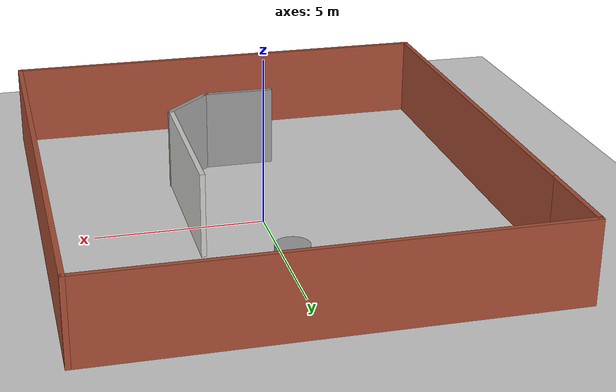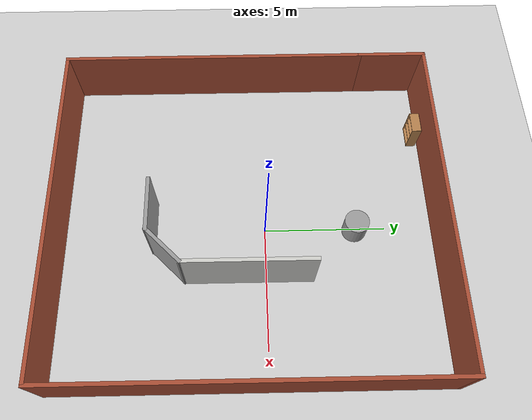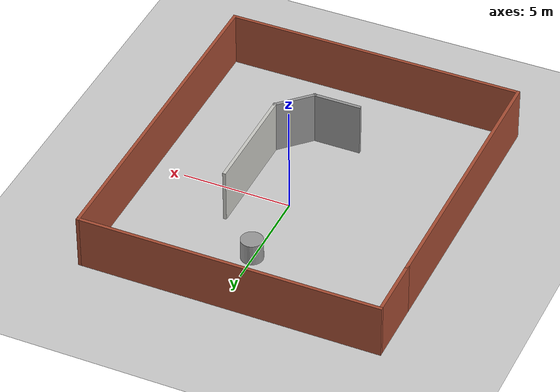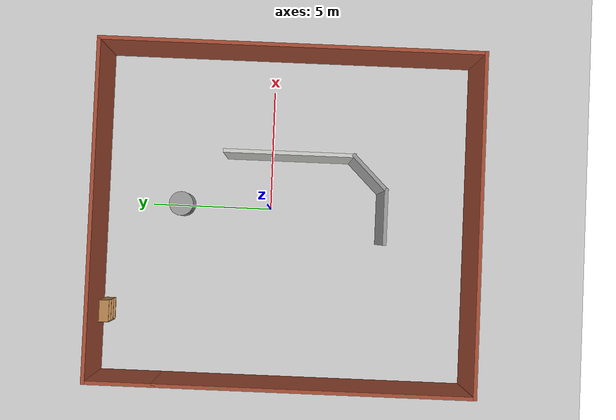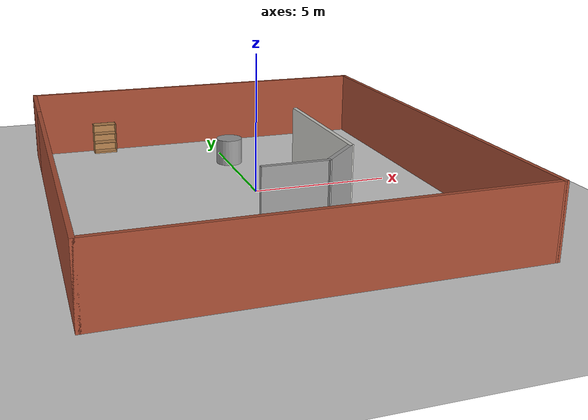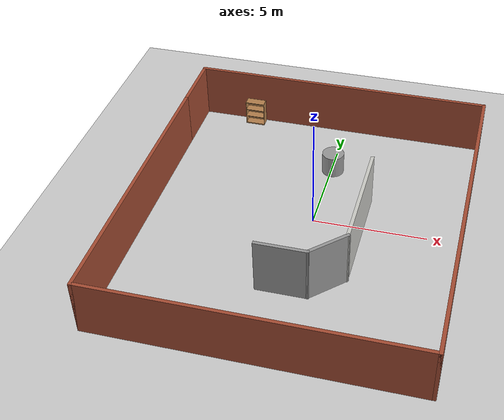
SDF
<sdf version="1.6">
 <world name="default">
  <light name="sun" type="directional">
   <pose>0 0 10 0 -0 0</pose>
   <diffuse>0.8 0.8 0.8 1</diffuse>
   <specular>0.2 0.2 0.2 1</specular>
   <attenuation>
    <range>1000</range>
    <constant>0.9</constant>
    <linear>0.01</linear>
    <quadratic>0.001</quadratic>
   </attenuation>
   <direction>-0.5 0.1 -0.9</direction>
  </light>
  <model name="ground_plane">
   <static>1</static>
   <link name="link">
    <collision name="collision">
     <geometry><plane><normal>0 0 1</normal><size>100 100</size></plane></geometry>
     <surface><friction><ode><mu>100</mu><mu2>50</mu2></ode></friction></surface>
    </collision>
    <visual name="visual">
     <cast_shadows>0</cast_shadows>
     <geometry><plane><normal>0 0 1</normal><size>100 100</size></plane></geometry>
     <material>
      <script><uri>file://media/materials/scripts/gazebo.material</uri><name>Gazebo/Grey</name></script>
     </material>
    </visual>
   </link>
  </model>
  <gravity>0 0 -9.8</gravity>
  <magnetic_field>6e-06 2.3e-05 -4.2e-05</magnetic_field>
  <atmosphere type="adiabatic"/>
  <physics name="default_physics" default="0" type="ode">
   <max_step_size>0.001</max_step_size>
   <real_time_factor>1</real_time_factor>
   <real_time_update_rate>1000</real_time_update_rate>
  </physics>
  <scene><ambient>0.4 0.4 0.4 1</ambient><background>0.7 0.7 0.7 1</background><shadows>1</shadows></scene>
  <audio><device>default</device></audio>
  <spherical_coordinates>
   <surface_model>EARTH_WGS84</surface_model>
   <latitude_deg>0</latitude_deg>
   <longitude_deg>0</longitude_deg>
   <elevation>0</elevation>
   <heading_deg>0</heading_deg>
  </spherical_coordinates>
  <model name="world_hmp">
   <pose>-0.36275 -0.662938 0 0 -0 0</pose>
   <link name="Wall_11">
    <collision name="Wall_11_Collision">
     <geometry><box><size>5.25 0.15 2.5</size></box></geometry>
     <pose>0 0 1.25 0 -0 0</pose>
    </collision>
    <visual name="Wall_11_Visual">
     <pose>0 0 1.25 0 -0 0</pose>
     <geometry><box><size>5.25 0.15 2.5</size></box></geometry>
     <material>
      <script><uri>file://media/materials/scripts/gazebo.material</uri><name>Gazebo/CeilingTiled</name></script>
      <ambient>1 1 1 1</ambient>
     </material>
     <meta><layer>0</layer></meta>
    </visual>
    <pose>2.52237 -0.052335 0 0 -0 -1.5708</pose>
   </link>
   <link name="Wall_12">
    <collision name="Wall_12_Collision">
     <geometry><box><size>2 0.15 2.5</size></box></geometry>
     <pose>0 0 1.25 0 -0 0</pose>
    </collision>
    <visual name="Wall_12_Visual">
     <pose>0 0 1.25 0 -0 0</pose>
     <geometry><box><size>2 0.15 2.5</size></box></geometry>
     <material>
      <script><uri>file://media/materials/scripts/gazebo.material</uri><name>Gazebo/Grey</name></script>
      <ambient>1 1 1 1</ambient>
     </material>
     <meta><layer>0</layer></meta>
    </visual>
    <pose>1.8683 -3.25641 0 0 -0 -2.35619</pose>
   </link>
   <link name="Wall_13">
    <collision name="Wall_13_Collision">
     <geometry><box><size>2.25 0.15 2.5</size></box></geometry>
     <pose>0 0 1.25 0 -0 0</pose>
    </collision>
    <visual name="Wall_13_Visual">
     <pose>0 0 1.25 0 -0 0</pose>
     <geometry><box><size>2.25 0.15 2.5</size></box></geometry>
     <material>
      <script><uri>file://media/materials/scripts/gazebo.material</uri><name>Gazebo/Grey</name></script>
      <ambient>1 1 1 1</ambient>
     </material>
     <meta><layer>0</layer></meta>
    </visual>
    <pose>0.164225 -3.91048 0 0 -0 3.14159</pose>
   </link>
   <link name="Wall_5">
    <collision name="Wall_5_Collision">
     <geometry><box><size>12.75 0.15 2.5</size></box></geometry>
     <pose>0 0 1.25 0 -0 0</pose>
    </collision>
    <visual name="Wall_5_Visual">
     <pose>0 0 1.25 0 -0 0</pose>
     <geometry><box><size>12.75 0.15 2.5</size></box></geometry>
     <material>
      <script><uri>file://media/materials/scripts/gazebo.material</uri><name>Gazebo/Bricks</name></script>
      <ambient>1 1 1 1</ambient>
     </material>
     <meta><layer>0</layer></meta>
    </visual>
    <pose>-6.8 -1.375 0 0 -0 -1.5708</pose>
   </link>
   <link name="Wall_6">
    <collision name="Wall_6_Collision">
     <geometry><box><size>13.75 0.15 2.5</size></box></geometry>
     <pose>0 0 1.25 0 -0 0</pose>
    </collision>
    <visual name="Wall_6_Visual">
     <pose>0 0 1.25 0 -0 0</pose>
     <geometry><box><size>13.75 0.15 2.5</size></box></geometry>
     <material>
      <script><uri>file://media/materials/scripts/gazebo.material</uri><name>Gazebo/Bricks</name></script>
      <ambient>1 1 1 1</ambient>
     </material>
     <meta><layer>0</layer></meta>
    </visual>
    <pose>-0 -7.675 0 0 -0 0</pose>
   </link>
   <link name="Wall_7">
    <collision name="Wall_7_Collision">
     <geometry><box><size>15.5 0.15 2.5</size></box></geometry>
     <pose>0 0 1.25 0 -0 0</pose>
    </collision>
    <visual name="Wall_7_Visual">
     <pose>0 0 1.25 0 -0 0</pose>
     <geometry><box><size>15.5 0.15 2.5</size></box></geometry>
     <material>
      <script><uri>file://media/materials/scripts/gazebo.material</uri><name>Gazebo/Bricks</name></script>
      <ambient>1 1 1 1</ambient>
     </material>
     <meta><layer>0</layer></meta>
    </visual>
    <pose>6.8 -0 0 0 -0 1.5708</pose>
   </link>
   <link name="Wall_8">
    <collision name="Wall_8_Collision">
     <geometry><box><size>13.75 0.15 2.5</size></box></geometry>
     <pose>0 0 1.25 0 -0 0</pose>
    </collision>
    <visual name="Wall_8_Visual">
     <pose>0 0 1.25 0 -0 0</pose>
     <geometry><box><size>13.75 0.15 2.5</size></box></geometry>
     <material>
      <script><uri>file://media/materials/scripts/gazebo.material</uri><name>Gazebo/Bricks</name></script>
      <ambient>1 1 1 1</ambient>
     </material>
     <meta><layer>0</layer></meta>
    </visual>
    <pose>-0 7.675 0 0 -0 3.14159</pose>
   </link>
   <link name="Wall_9">
    <collision name="Wall_9_Collision">
     <geometry><box><size>2.9 0.15 2.5</size></box></geometry>
     <pose>0 0 1.25 0 -0 0</pose>
    </collision>
    <visual name="Wall_9_Visual">
     <pose>0 0 1.25 0 -0 0</pose>
     <geometry><box><size>2.9 0.15 2.5</size></box></geometry>
     <material>
      <script><uri>file://media/materials/scripts/gazebo.material</uri><name>Gazebo/Bricks</name></script>
      <ambient>1 1 1 1</ambient>
     </material>
     <meta><layer>0</layer></meta>
    </visual>
    <pose>-6.8 6.3 0 0 -0 -1.5708</pose>
   </link>
   <static>1</static>
  </model>
  <model name="bookshelf">
   <static>1</static>
   <link name="link">
    <inertial><mass>1</mass></inertial>
    <collision name="back">
     <pose>0 0.005 0.6 0 -0 0</pose>
     <geometry><box><size>0.9 0.01 1.2</size></box></geometry>
    </collision>
    <visual name="visual1">
     <pose>0 0.005 0.6 0 -0 0</pose>
     <geometry><box><size>0.9 0.01 1.2</size></box></geometry>
     <material>
      <script><uri>file://media/materials/scripts/gazebo.material</uri><name>Gazebo/Wood</name></script>
     </material>
    </visual>
    <collision name="left_side">
     <pose>0.45 -0.195 0.6 0 -0 0</pose>
     <geometry><box><size>0.02 0.4 1.2</size></box></geometry>
    </collision>
    <visual name="visual2">
     <pose>0.45 -0.195 0.6 0 -0 0</pose>
     <geometry><box><size>0.02 0.4 1.2</size></box></geometry>
     <material>
      <script><uri>file://media/materials/scripts/gazebo.material</uri><name>Gazebo/Wood</name></script>
     </material>
    </visual>
    <collision name="right_side">
     <pose>-0.45 -0.195 0.6 0 -0 0</pose>
     <geometry><box><size>0.02 0.4 1.2</size></box></geometry>
    </collision>
    <visual name="visual3">
     <pose>-0.45 -0.195 0.6 0 -0 0</pose>
     <geometry><box><size>0.02 0.4 1.2</size></box></geometry>
     <material>
      <script><uri>file://media/materials/scripts/gazebo.material</uri><name>Gazebo/Wood</name></script>
     </material>
    </visual>
    <collision name="bottom">
     <pose>0 -0.195 0.03 0 -0 0</pose>
     <geometry><box><size>0.88 0.4 0.06</size></box></geometry>
    </collision>
    <visual name="visual4">
     <pose>0 -0.195 0.03 0 -0 0</pose>
     <geometry><box><size>0.88 0.4 0.06</size></box></geometry>
     <material>
      <script><uri>file://media/materials/scripts/gazebo.material</uri><name>Gazebo/Wood</name></script>
     </material>
    </visual>
    <collision name="top">
     <pose>0 -0.195 1.19 0 -0 0</pose>
     <geometry><box><size>0.88 0.4 0.02</size></box></geometry>
    </collision>
    <visual name="visual5">
     <pose>0 -0.195 1.19 0 -0 0</pose>
     <geometry><box><size>0.88 0.4 0.02</size></box></geometry>
     <material>
      <script><uri>file://media/materials/scripts/gazebo.material</uri><name>Gazebo/Wood</name></script>
     </material>
    </visual>
    <collision name="low_shelf">
     <pose>0 -0.195 0.43 0 -0 0</pose>
     <geometry><box><size>0.88 0.4 0.02</size></box></geometry>
    </collision>
    <visual name="visual6">
     <pose>0 -0.195 0.43 0 -0 0</pose>
     <geometry><box><size>0.88 0.4 0.02</size></box></geometry>
     <material>
      <script><uri>file://media/materials/scripts/gazebo.material</uri><name>Gazebo/Wood</name></script>
     </material>
    </visual>
    <collision name="high_shelf">
     <pose>0 -0.195 0.8 0 -0 0</pose>
     <geometry><box><size>0.88 0.4 0.02</size></box></geometry>
    </collision>
    <visual name="visual7">
     <pose>0 -0.195 0.8 0 -0 0</pose>
     <geometry><box><size>0.88 0.4 0.02</size></box></geometry>
     <material>
      <script><uri>file://media/materials/scripts/gazebo.material</uri><name>Gazebo/Wood</name></script>
     </material>
    </visual>
   </link>
   <pose>-4.49368 6.83558 0 0 -0 0</pose>
  </model>
  <model name="unit_cylinder">
   <pose>0.059062 3.69885 0.499997 3e-06 4e-06 -0</pose>
   <link name="link">
    <inertial>
     <mass>1</mass>
     <inertia><ixx>0.145833</ixx><ixy>0</ixy><ixz>0</ixz><iyy>0.145833</iyy><iyz>0</iyz><izz>0.125</izz></inertia>
    </inertial>
    <collision name="collision">
     <geometry><cylinder><radius>0.5</radius><length>1</length></cylinder></geometry>
    </collision>
    <visual name="visual">
     <geometry><cylinder><radius>0.5</radius><length>1</length></cylinder></geometry>
     <material>
      <script><name>Gazebo/Grey</name><uri>file://media/materials/scripts/gazebo.material</uri></script>
     </material>
    </visual>
   </link>
  </model>
 </world>
</sdf>
